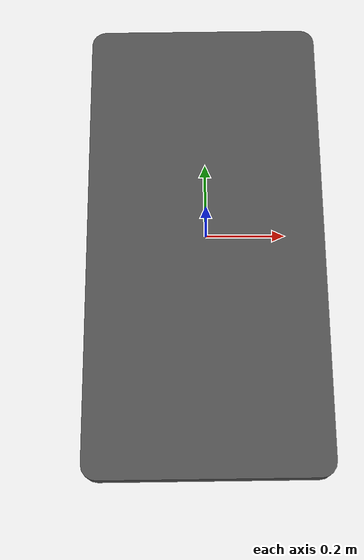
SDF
<?xml version="1.0" ?>
<sdf version="1.4">
  <model name="folding_table_4x2">
    <static>true</static>
    <link name="link">
      <collision name="collision">
        <geometry>
          <mesh>
            <uri>model://folding_table_4x2/meshes/folding_table_4x2.stl</uri>
          </mesh>
        </geometry>
      </collision>
      <visual name="visual">
        <geometry>
          <mesh>
            <uri>model://folding_table_4x2/meshes/folding_table_4x2.dae</uri>
          </mesh>
        </geometry>
      </visual>
    </link>
  </model>
</sdf>
